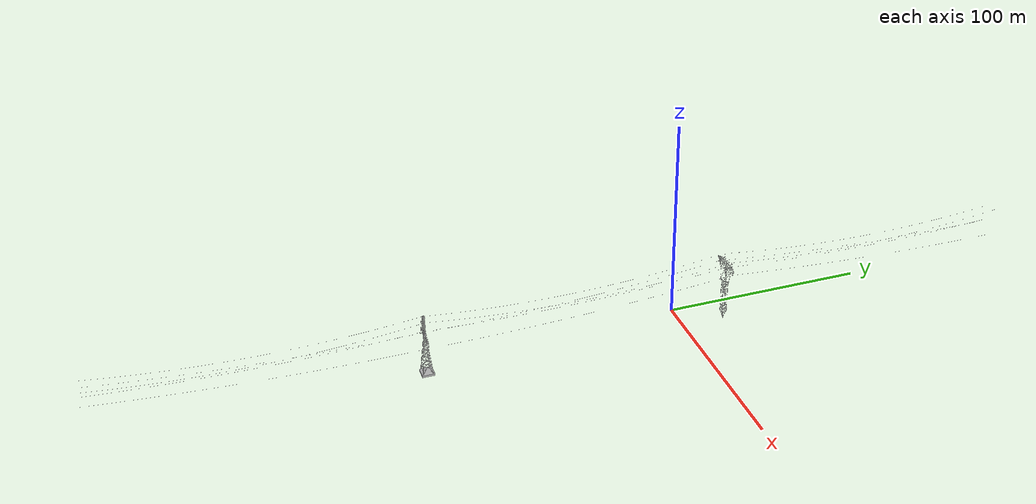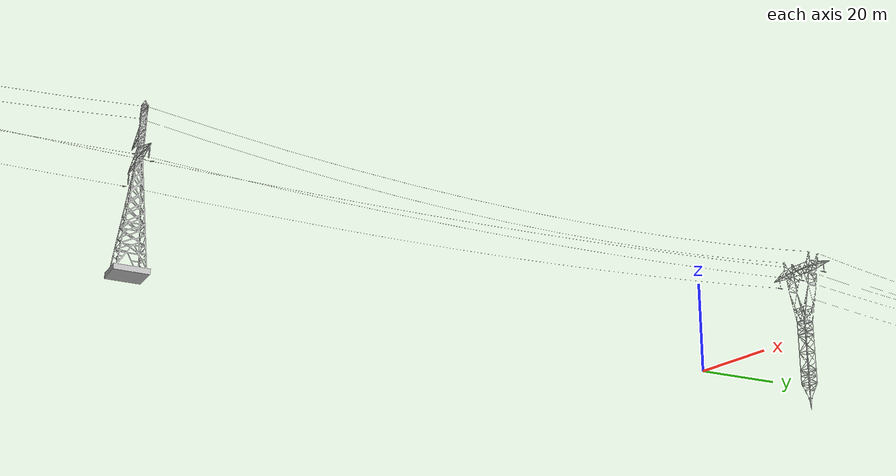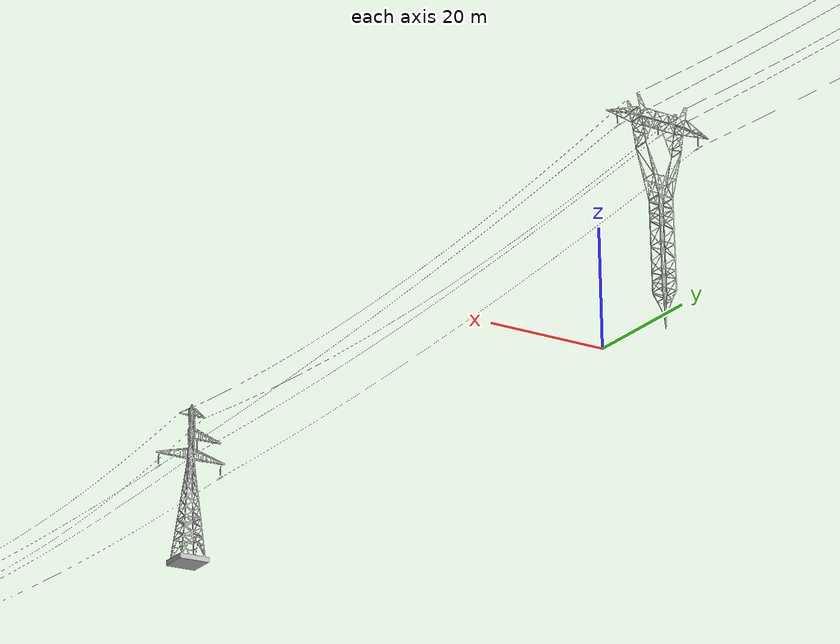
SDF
<?xml version="1.0" ?>
<sdf version="1.5">
  <model name="shudian">
    <static>true</static>
    <link name="shudian_link">
      <collision name="collision">
        <geometry>
          <mesh>
          <scale>0.001 0.001 0.001</scale>
            <uri>model://shudian2/meshes/highline.obj</uri>
          </mesh>
        </geometry>
      </collision>
      <visual name="visual">
        <geometry>
          <mesh>
          <scale>0.001 0.001 0.001</scale>
            <uri>model://shudian2/meshes/highline.obj</uri>
          </mesh>
        </geometry>
      </visual>
    </link>
  </model>
</sdf>
